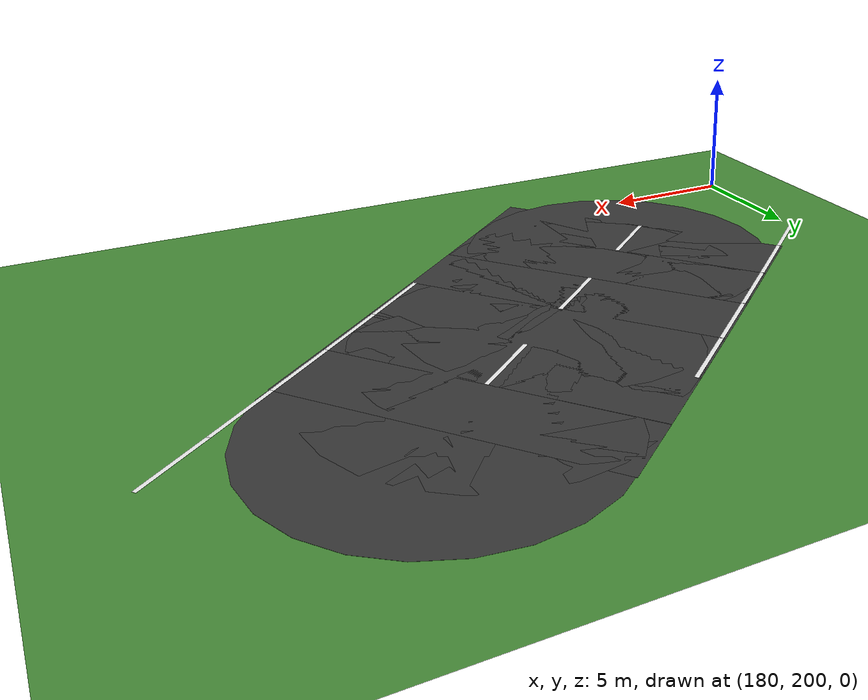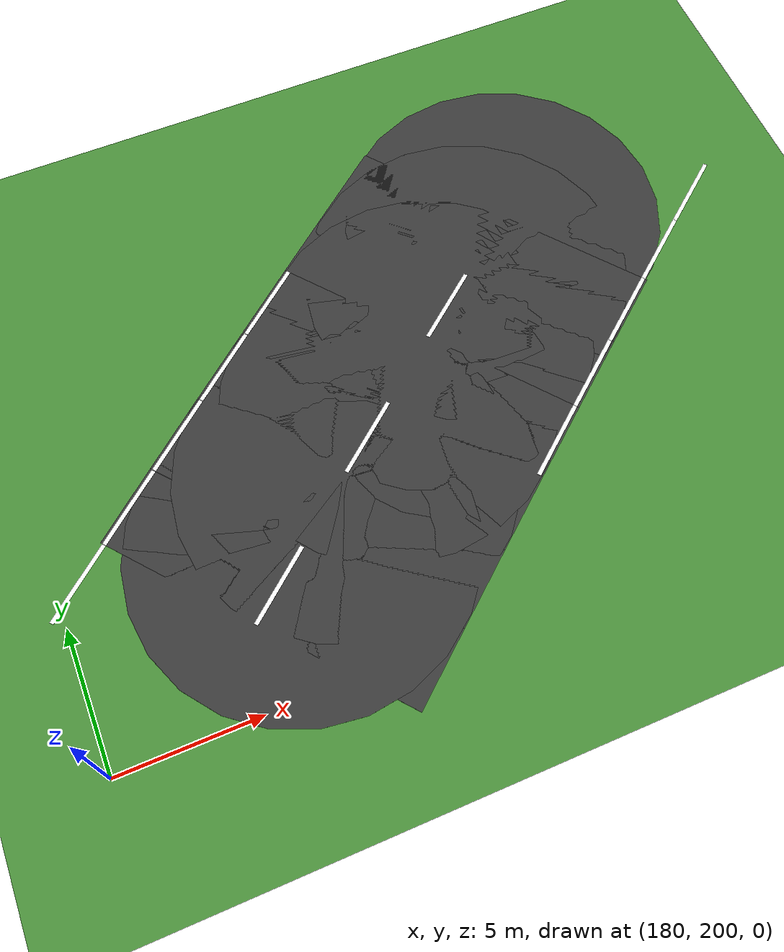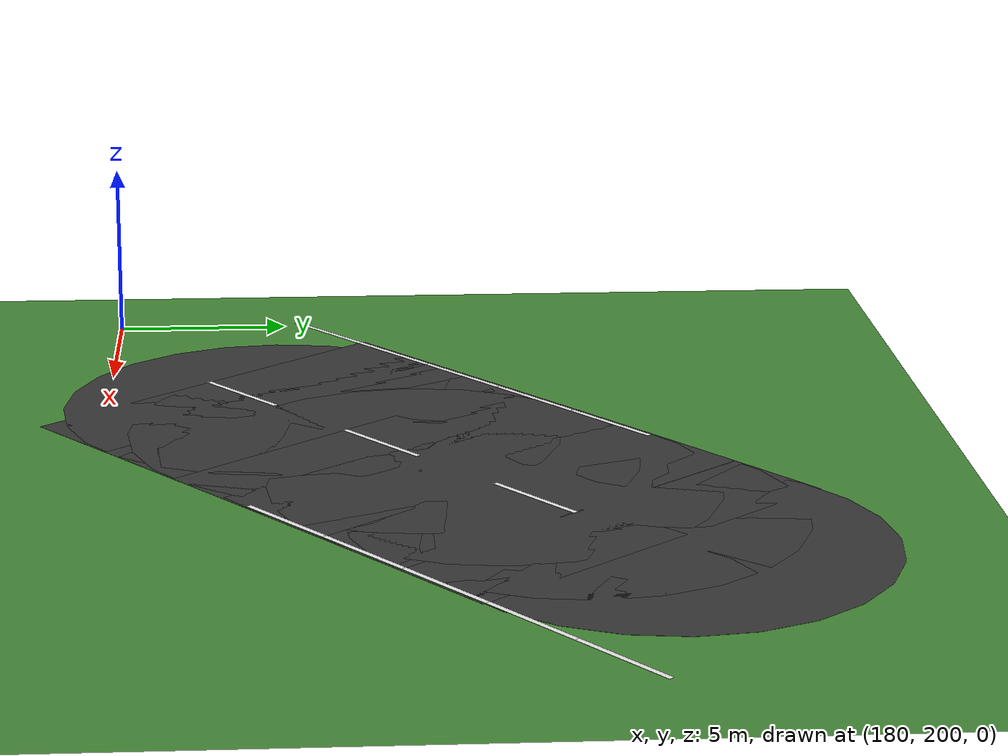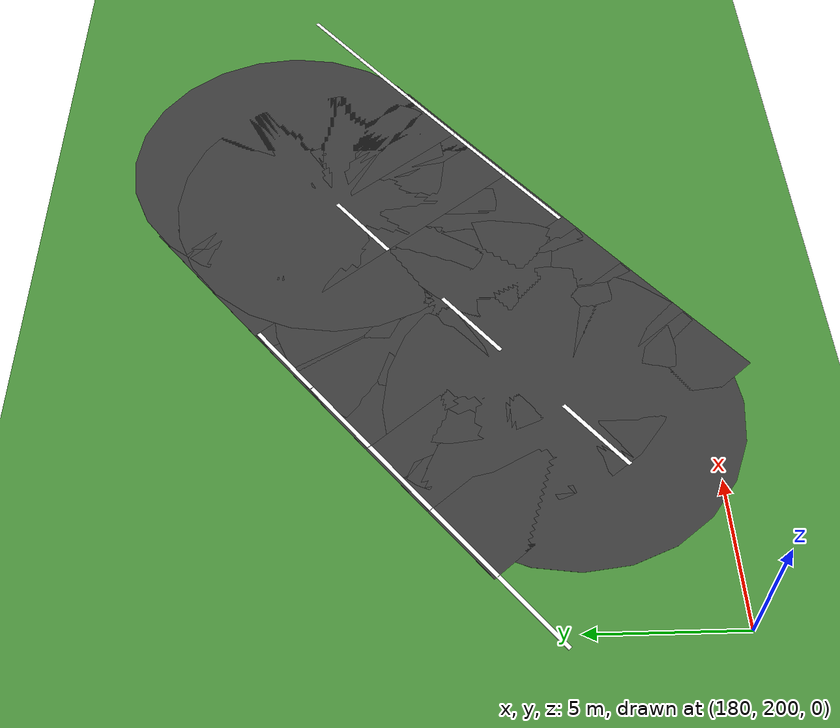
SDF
<sdf version="1.6">
 <world name="sem_silesia_ring_2026">
  <model name="ground_plane">
   <static>true</static>
   <link name="link">
    <collision name="collision">
     <geometry><plane><normal>0 0 1</normal><size>1200 1200</size></plane></geometry>
     <surface><friction><ode><mu>0.6</mu><mu2>0.6</mu2></ode></friction></surface>
    </collision>
    <visual name="visual">
     <geometry><plane><normal>0 0 1</normal><size>1200 1200</size></plane></geometry>
     <material><ambient>0.28 0.55 0.22 1</ambient><diffuse>0.28 0.55 0.22 1</diffuse></material>
    </visual>
   </link>
  </model>
  <model name="wl_L_s243">
   <static>true</static>
   <pose>206.7107 212.5123 0.0070 0 0 -2.4694</pose>
   <link name="link">
    <visual name="v">
     <geometry><box><size>3.0025 0.1500 0.0080</size></box></geometry>
     <material><ambient>0.95 0.95 0.95 1</ambient><diffuse>0.95 0.95 0.95 1</diffuse></material>
    </visual>
   </link>
  </model>
  <model name="wl_L_s244">
   <static>true</static>
   <pose>204.3826 210.6522 0.0070 0 0 -2.4656</pose>
   <link name="link">
    <visual name="v">
     <geometry><box><size>3.0025 0.1500 0.0080</size></box></geometry>
     <material><ambient>0.95 0.95 0.95 1</ambient><diffuse>0.95 0.95 0.95 1</diffuse></material>
    </visual>
   </link>
  </model>
  <model name="road_s245">
   <static>true</static>
   <pose>198.3837 213.3324 0.0030 0 0 -2.4617</pose>
   <link name="link">
    <visual name="v">
     <geometry><box><size>3.0025 12.0000 0.0060</size></box></geometry>
     <material><ambient>0.22 0.22 0.22 1</ambient><diffuse>0.22 0.22 0.22 1</diffuse></material>
    </visual>
    <collision name="c">
     <geometry><box><size>3.0025 12.0000 0.0060</size></box></geometry>
     <surface><friction><ode><mu>0.9</mu><mu2>0.9</mu2></ode></friction></surface>
    </collision>
   </link>
  </model>
  <model name="road_jnt245">
   <static>true</static>
   <pose>199.5511 214.2762 0.0030 0 0 0</pose>
   <link name="link">
    <visual name="v">
     <geometry><cylinder><radius>6.0000</radius><length>0.0060</length></cylinder></geometry>
     <material><ambient>0.22 0.22 0.22 1</ambient><diffuse>0.22 0.22 0.22 1</diffuse></material>
    </visual>
    <collision name="c">
     <geometry><cylinder><radius>6.0000</radius><length>0.0060</length></cylinder></geometry>
     <surface><friction><ode><mu>0.9</mu><mu2>0.9</mu2></ode></friction></surface>
    </collision>
   </link>
  </model>
  <model name="wl_L_s245">
   <static>true</static>
   <pose>202.0615 208.7831 0.0070 0 0 -2.4617</pose>
   <link name="link">
    <visual name="v">
     <geometry><box><size>3.0025 0.1500 0.0080</size></box></geometry>
     <material><ambient>0.95 0.95 0.95 1</ambient><diffuse>0.95 0.95 0.95 1</diffuse></material>
    </visual>
   </link>
  </model>
  <model name="road_s246">
   <static>true</static>
   <pose>196.0523 211.4403 0.0030 0 0 -2.4579</pose>
   <link name="link">
    <visual name="v">
     <geometry><box><size>3.0025 12.0000 0.0060</size></box></geometry>
     <material><ambient>0.22 0.22 0.22 1</ambient><diffuse>0.22 0.22 0.22 1</diffuse></material>
    </visual>
    <collision name="c">
     <geometry><box><size>3.0025 12.0000 0.0060</size></box></geometry>
     <surface><friction><ode><mu>0.9</mu><mu2>0.9</mu2></ode></friction></surface>
    </collision>
   </link>
  </model>
  <model name="road_jnt246">
   <static>true</static>
   <pose>197.2162 212.3885 0.0030 0 0 0</pose>
   <link name="link">
    <visual name="v">
     <geometry><cylinder><radius>6.0000</radius><length>0.0060</length></cylinder></geometry>
     <material><ambient>0.22 0.22 0.22 1</ambient><diffuse>0.22 0.22 0.22 1</diffuse></material>
    </visual>
    <collision name="c">
     <geometry><cylinder><radius>6.0000</radius><length>0.0060</length></cylinder></geometry>
     <surface><friction><ode><mu>0.9</mu><mu2>0.9</mu2></ode></friction></surface>
    </collision>
   </link>
  </model>
  <model name="wl_L_s246">
   <static>true</static>
   <pose>199.7474 206.9050 0.0070 0 0 -2.4579</pose>
   <link name="link">
    <visual name="v">
     <geometry><box><size>3.0025 0.1500 0.0080</size></box></geometry>
     <material><ambient>0.95 0.95 0.95 1</ambient><diffuse>0.95 0.95 0.95 1</diffuse></material>
    </visual>
   </link>
  </model>
  <model name="cd_s246">
   <static>true</static>
   <pose>196.0523 211.4403 0.0070 0 0 -2.4579</pose>
   <link name="link">
    <visual name="v">
     <geometry><box><size>3.0025 0.1500 0.0080</size></box></geometry>
     <material><ambient>0.95 0.95 0.95 1</ambient><diffuse>0.95 0.95 0.95 1</diffuse></material>
    </visual>
   </link>
  </model>
  <model name="road_s247">
   <static>true</static>
   <pose>193.7282 209.5393 0.0030 0 0 -2.4541</pose>
   <link name="link">
    <visual name="v">
     <geometry><box><size>3.0025 12.0000 0.0060</size></box></geometry>
     <material><ambient>0.22 0.22 0.22 1</ambient><diffuse>0.22 0.22 0.22 1</diffuse></material>
    </visual>
    <collision name="c">
     <geometry><box><size>3.0025 12.0000 0.0060</size></box></geometry>
     <surface><friction><ode><mu>0.9</mu><mu2>0.9</mu2></ode></friction></surface>
    </collision>
   </link>
  </model>
  <model name="road_jnt247">
   <static>true</static>
   <pose>194.8884 210.4920 0.0030 0 0 0</pose>
   <link name="link">
    <visual name="v">
     <geometry><cylinder><radius>6.0000</radius><length>0.0060</length></cylinder></geometry>
     <material><ambient>0.22 0.22 0.22 1</ambient><diffuse>0.22 0.22 0.22 1</diffuse></material>
    </visual>
    <collision name="c">
     <geometry><cylinder><radius>6.0000</radius><length>0.0060</length></cylinder></geometry>
     <surface><friction><ode><mu>0.9</mu><mu2>0.9</mu2></ode></friction></surface>
    </collision>
   </link>
  </model>
  <model name="wl_L_s247">
   <static>true</static>
   <pose>197.4404 205.0181 0.0070 0 0 -2.4541</pose>
   <link name="link">
    <visual name="v">
     <geometry><box><size>3.0025 0.1500 0.0080</size></box></geometry>
     <material><ambient>0.95 0.95 0.95 1</ambient><diffuse>0.95 0.95 0.95 1</diffuse></material>
    </visual>
   </link>
  </model>
  <model name="wl_R_s247">
   <static>true</static>
   <pose>190.0159 214.0606 0.0070 0 0 -2.4541</pose>
   <link name="link">
    <visual name="v">
     <geometry><box><size>3.0025 0.1500 0.0080</size></box></geometry>
     <material><ambient>0.95 0.95 0.95 1</ambient><diffuse>0.95 0.95 0.95 1</diffuse></material>
    </visual>
   </link>
  </model>
  <model name="road_s248">
   <static>true</static>
   <pose>191.4112 207.6296 0.0030 0 0 -2.4504</pose>
   <link name="link">
    <visual name="v">
     <geometry><box><size>3.0025 12.0000 0.0060</size></box></geometry>
     <material><ambient>0.22 0.22 0.22 1</ambient><diffuse>0.22 0.22 0.22 1</diffuse></material>
    </visual>
    <collision name="c">
     <geometry><box><size>3.0025 12.0000 0.0060</size></box></geometry>
     <surface><friction><ode><mu>0.9</mu><mu2>0.9</mu2></ode></friction></surface>
    </collision>
   </link>
  </model>
  <model name="road_jnt248">
   <static>true</static>
   <pose>192.5679 208.5867 0.0030 0 0 0</pose>
   <link name="link">
    <visual name="v">
     <geometry><cylinder><radius>6.0000</radius><length>0.0060</length></cylinder></geometry>
     <material><ambient>0.22 0.22 0.22 1</ambient><diffuse>0.22 0.22 0.22 1</diffuse></material>
    </visual>
    <collision name="c">
     <geometry><cylinder><radius>6.0000</radius><length>0.0060</length></cylinder></geometry>
     <surface><friction><ode><mu>0.9</mu><mu2>0.9</mu2></ode></friction></surface>
    </collision>
   </link>
  </model>
  <model name="wl_R_s248">
   <static>true</static>
   <pose>187.6820 212.1369 0.0070 0 0 -2.4504</pose>
   <link name="link">
    <visual name="v">
     <geometry><box><size>3.0025 0.1500 0.0080</size></box></geometry>
     <material><ambient>0.95 0.95 0.95 1</ambient><diffuse>0.95 0.95 0.95 1</diffuse></material>
    </visual>
   </link>
  </model>
  <model name="cd_s248">
   <static>true</static>
   <pose>191.4112 207.6296 0.0070 0 0 -2.4504</pose>
   <link name="link">
    <visual name="v">
     <geometry><box><size>3.0025 0.1500 0.0080</size></box></geometry>
     <material><ambient>0.95 0.95 0.95 1</ambient><diffuse>0.95 0.95 0.95 1</diffuse></material>
    </visual>
   </link>
  </model>
  <model name="road_s249">
   <static>true</static>
   <pose>189.1012 205.7116 0.0030 0 0 -2.4469</pose>
   <link name="link">
    <visual name="v">
     <geometry><box><size>3.0025 12.0000 0.0060</size></box></geometry>
     <material><ambient>0.22 0.22 0.22 1</ambient><diffuse>0.22 0.22 0.22 1</diffuse></material>
    </visual>
    <collision name="c">
     <geometry><box><size>3.0025 12.0000 0.0060</size></box></geometry>
     <surface><friction><ode><mu>0.9</mu><mu2>0.9</mu2></ode></friction></surface>
    </collision>
   </link>
  </model>
  <model name="road_jnt249">
   <static>true</static>
   <pose>190.2545 206.6726 0.0030 0 0 0</pose>
   <link name="link">
    <visual name="v">
     <geometry><cylinder><radius>6.0000</radius><length>0.0060</length></cylinder></geometry>
     <material><ambient>0.22 0.22 0.22 1</ambient><diffuse>0.22 0.22 0.22 1</diffuse></material>
    </visual>
    <collision name="c">
     <geometry><cylinder><radius>6.0000</radius><length>0.0060</length></cylinder></geometry>
     <surface><friction><ode><mu>0.9</mu><mu2>0.9</mu2></ode></friction></surface>
    </collision>
   </link>
  </model>
  <model name="wl_R_s249">
   <static>true</static>
   <pose>185.3562 210.2058 0.0070 0 0 -2.4469</pose>
   <link name="link">
    <visual name="v">
     <geometry><box><size>3.0025 0.1500 0.0080</size></box></geometry>
     <material><ambient>0.95 0.95 0.95 1</ambient><diffuse>0.95 0.95 0.95 1</diffuse></material>
    </visual>
   </link>
  </model>
  <model name="road_s250">
   <static>true</static>
   <pose>186.7970 203.7865 0.0030 0 0 -2.4443</pose>
   <link name="link">
    <visual name="v">
     <geometry><box><size>3.0025 12.0000 0.0060</size></box></geometry>
     <material><ambient>0.22 0.22 0.22 1</ambient><diffuse>0.22 0.22 0.22 1</diffuse></material>
    </visual>
    <collision name="c">
     <geometry><box><size>3.0025 12.0000 0.0060</size></box></geometry>
     <surface><friction><ode><mu>0.9</mu><mu2>0.9</mu2></ode></friction></surface>
    </collision>
   </link>
  </model>
  <model name="road_jnt250">
   <static>true</static>
   <pose>187.9479 204.7505 0.0030 0 0 0</pose>
   <link name="link">
    <visual name="v">
     <geometry><cylinder><radius>6.0000</radius><length>0.0060</length></cylinder></geometry>
     <material><ambient>0.22 0.22 0.22 1</ambient><diffuse>0.22 0.22 0.22 1</diffuse></material>
    </visual>
    <collision name="c">
     <geometry><cylinder><radius>6.0000</radius><length>0.0060</length></cylinder></geometry>
     <surface><friction><ode><mu>0.9</mu><mu2>0.9</mu2></ode></friction></surface>
    </collision>
   </link>
  </model>
  <model name="wl_R_s250">
   <static>true</static>
   <pose>183.0404 208.2710 0.0070 0 0 -2.4443</pose>
   <link name="link">
    <visual name="v">
     <geometry><box><size>3.0025 0.1500 0.0080</size></box></geometry>
     <material><ambient>0.95 0.95 0.95 1</ambient><diffuse>0.95 0.95 0.95 1</diffuse></material>
    </visual>
   </link>
  </model>
  <model name="cd_s250">
   <static>true</static>
   <pose>186.7970 203.7865 0.0070 0 0 -2.4443</pose>
   <link name="link">
    <visual name="v">
     <geometry><box><size>3.0025 0.1500 0.0080</size></box></geometry>
     <material><ambient>0.95 0.95 0.95 1</ambient><diffuse>0.95 0.95 0.95 1</diffuse></material>
    </visual>
   </link>
  </model>
  <model name="wl_R_s251">
   <static>true</static>
   <pose>180.7333 206.3353 0.0070 0 0 -2.4427</pose>
   <link name="link">
    <visual name="v">
     <geometry><box><size>3.0025 0.1500 0.0080</size></box></geometry>
     <material><ambient>0.95 0.95 0.95 1</ambient><diffuse>0.95 0.95 0.95 1</diffuse></material>
    </visual>
   </link>
  </model>
 </world>
</sdf>
